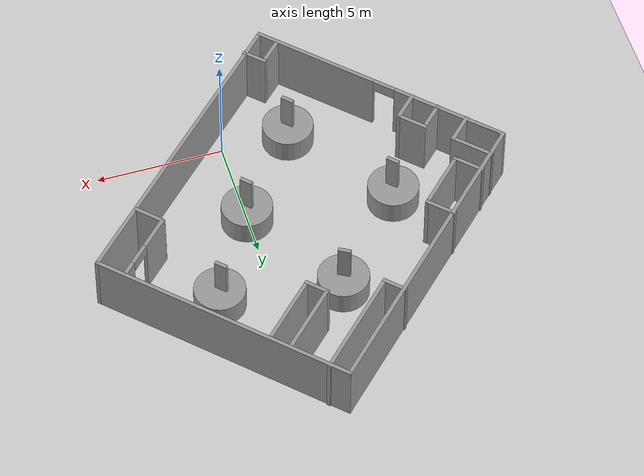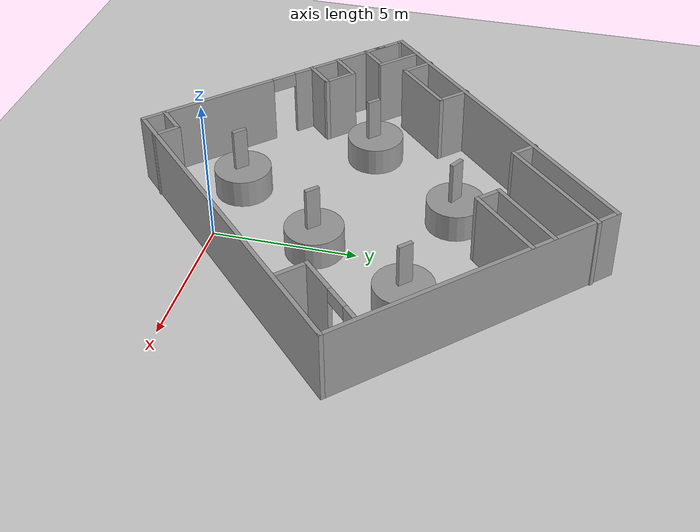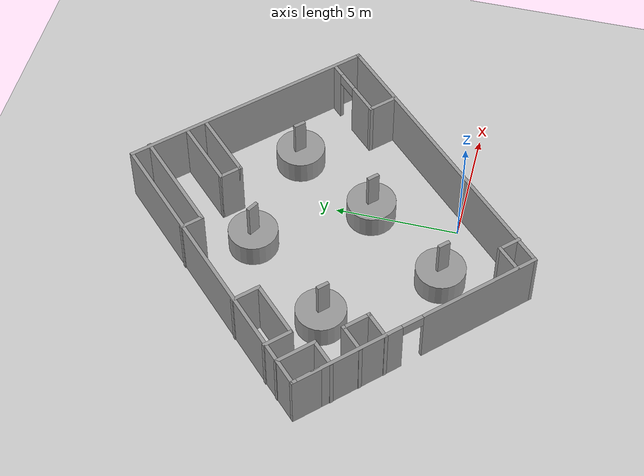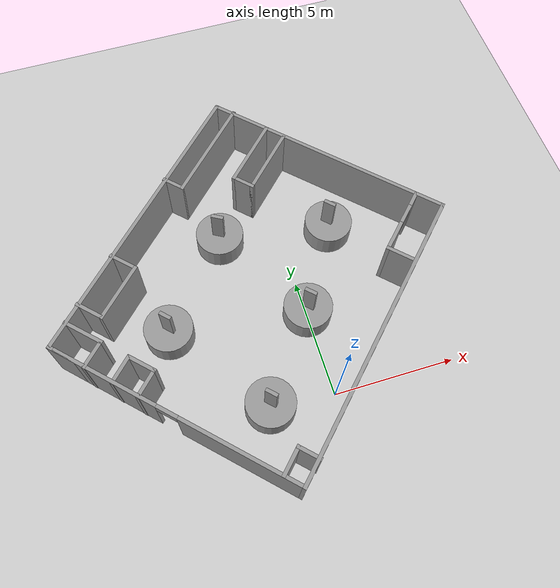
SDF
<sdf version="1.7">
 <world name="default">
  <light name="sun" type="directional">
   <pose>0 0 10 0 -0 0</pose>
   <diffuse>0.8 0.8 0.8 1</diffuse>
   <specular>0.2 0.2 0.2 1</specular>
   <attenuation>
    <range>1000</range>
    <constant>0.9</constant>
    <linear>0.01</linear>
    <quadratic>0.001</quadratic>
   </attenuation>
   <direction>-0.5 0.1 -0.9</direction>
   <spot><inner_angle>0</inner_angle><outer_angle>0</outer_angle><falloff>0</falloff></spot>
  </light>
  <model name="ground_plane">
   <static>1</static>
   <link name="link">
    <collision name="collision">
     <geometry><plane><normal>0 0 1</normal><size>100 100</size></plane></geometry>
     <surface>
      <contact><collide_bitmask>65535</collide_bitmask></contact>
      <friction><ode><mu>100</mu><mu2>50</mu2></ode></friction>
     </surface>
    </collision>
    <visual name="visual">
     <cast_shadows>0</cast_shadows>
     <geometry><plane><normal>0 0 1</normal><size>100 100</size></plane></geometry>
     <material>
      <script><uri>file://media/materials/scripts/gazebo.material</uri><name>Gazebo/Grey</name></script>
     </material>
    </visual>
   </link>
  </model>
  <gravity>0 0 -9.8</gravity>
  <magnetic_field>6e-06 2.3e-05 -4.2e-05</magnetic_field>
  <atmosphere type="adiabatic"/>
  <physics type="ode">
   <max_step_size>0.001</max_step_size>
   <real_time_factor>1</real_time_factor>
   <real_time_update_rate>1000</real_time_update_rate>
  </physics>
  <scene><ambient>0.4 0.4 0.4 1</ambient><background>0.7 0.7 0.7 1</background><shadows>1</shadows></scene>
  <spherical_coordinates>
   <surface_model>EARTH_WGS84</surface_model>
   <latitude_deg>0</latitude_deg>
   <longitude_deg>0</longitude_deg>
   <elevation>0</elevation>
   <heading_deg>0</heading_deg>
  </spherical_coordinates>
  <model name="lab_design">
   <pose>-1.80927 4.91103 0 0 -0 0</pose>
   <link name="Wall_100">
    <collision name="Wall_100_Collision">
     <geometry><box><size>1 0.15 2.5</size></box></geometry>
     <pose>0 0 1.25 0 -0 0</pose>
    </collision>
    <visual name="Wall_100_Visual">
     <pose>0 0 1.25 0 -0 0</pose>
     <geometry><box><size>1 0.15 2.5</size></box></geometry>
     <material>
      <script><uri>file://media/materials/scripts/gazebo.material</uri><name>Gazebo/Grey</name></script>
      <ambient>1 1 1 1</ambient>
     </material>
     <meta><layer>0</layer></meta>
    </visual>
    <pose>-0.19985 -7.14708 0 0 -0 -0.785398</pose>
   </link>
   <link name="Wall_15">
    <collision name="Wall_15_Collision">
     <geometry><box><size>0.5 0.15 2.5</size></box></geometry>
     <pose>0 0 1.25 0 -0 0</pose>
    </collision>
    <visual name="Wall_15_Visual">
     <pose>0 0 1.25 0 -0 0</pose>
     <geometry><box><size>0.5 0.15 2.5</size></box></geometry>
     <material>
      <script><uri>file://media/materials/scripts/gazebo.material</uri><name>Gazebo/Grey</name></script>
      <ambient>1 1 1 1</ambient>
     </material>
     <meta><layer>0</layer></meta>
    </visual>
    <pose>1.82373 -1.37773 0 0 -0 -0.785398</pose>
   </link>
   <link name="Wall_19">
    <collision name="Wall_19_Collision">
     <geometry><box><size>0.5 0.15 2.5</size></box></geometry>
     <pose>0 0 1.25 0 -0 0</pose>
    </collision>
    <visual name="Wall_19_Visual">
     <pose>0 0 1.25 0 -0 0</pose>
     <geometry><box><size>0.5 0.15 2.5</size></box></geometry>
     <material>
      <script><uri>file://media/materials/scripts/gazebo.material</uri><name>Gazebo/Grey</name></script>
      <ambient>1 1 1 1</ambient>
     </material>
     <meta><layer>0</layer></meta>
    </visual>
    <pose>-3.78926 -0.725735 0 0 -0 -0.785398</pose>
   </link>
   <link name="Wall_21">
    <collision name="Wall_21_Collision">
     <geometry><box><size>0.5 0.15 2.5</size></box></geometry>
     <pose>0 0 1.25 0 -0 0</pose>
    </collision>
    <visual name="Wall_21_Visual">
     <pose>0 0 1.25 0 -0 0</pose>
     <geometry><box><size>0.5 0.15 2.5</size></box></geometry>
     <material>
      <script><uri>file://media/materials/scripts/gazebo.material</uri><name>Gazebo/Grey</name></script>
      <ambient>1 1 1 1</ambient>
     </material>
     <meta><layer>0</layer></meta>
    </visual>
    <pose>-0.75467 2.8371 0 0 -0 -0.523599</pose>
   </link>
   <link name="Wall_23">
    <collision name="Wall_23_Collision">
     <geometry><box><size>0.5 0.15 2.5</size></box></geometry>
     <pose>0 0 1.25 0 -0 0</pose>
    </collision>
    <visual name="Wall_23_Visual">
     <pose>0 0 1.25 0 -0 0</pose>
     <geometry><box><size>0.5 0.15 2.5</size></box></geometry>
     <material>
      <script><uri>file://media/materials/scripts/gazebo.material</uri><name>Gazebo/Grey</name></script>
      <ambient>1 1 1 1</ambient>
     </material>
     <meta><layer>0</layer></meta>
    </visual>
    <pose>-0.811209 -4.73696 0 0 -0 -0.785398</pose>
   </link>
   <link name="Wall_25">
    <collision name="Wall_25_Collision">
     <geometry><box><size>0.5 0.15 2.5</size></box></geometry>
     <pose>0 0 1.25 0 -0 0</pose>
    </collision>
    <visual name="Wall_25_Visual">
     <pose>0 0 1.25 0 -0 0</pose>
     <geometry><box><size>0.5 0.15 2.5</size></box></geometry>
     <material>
      <script><uri>file://media/materials/scripts/gazebo.material</uri><name>Gazebo/Grey</name></script>
      <ambient>1 1 1 1</ambient>
     </material>
     <meta><layer>0</layer></meta>
    </visual>
    <pose>3.83481 2.12958 0 0 -0 -0.785398</pose>
   </link>
   <link name="Wall_4">
    <pose>-4.36638 -4.54316 0 0 -0 -0.785398</pose>
    <visual name="Wall_4_Visual_0">
     <pose>-3.01215 0 1.25 0 -0 0</pose>
     <geometry><box><size>4.4757 0.15 2.5</size></box></geometry>
     <material>
      <script><uri>file://media/materials/scripts/gazebo.material</uri><name>Gazebo/Grey</name></script>
      <ambient>1 1 1 1</ambient>
     </material>
     <meta><layer>0</layer></meta>
    </visual>
    <collision name="Wall_4_Collision_0">
     <geometry><box><size>4.4757 0.15 2.5</size></box></geometry>
     <pose>-3.01215 0 1.25 0 -0 0</pose>
    </collision>
    <visual name="Wall_4_Visual_1">
     <pose>2.68785 0 1.25 0 -0 0</pose>
     <geometry><box><size>5.1243 0.15 2.5</size></box></geometry>
     <material>
      <script><uri>file://media/materials/scripts/gazebo.material</uri><name>Gazebo/Grey</name></script>
      <ambient>1 1 1 1</ambient>
     </material>
     <meta><layer>0</layer></meta>
    </visual>
    <collision name="Wall_4_Collision_1">
     <geometry><box><size>5.1243 0.15 2.5</size></box></geometry>
     <pose>2.68785 0 1.25 0 -0 0</pose>
    </collision>
    <visual name="Wall_4_Visual_2">
     <pose>-0.324296 0 2.25 0 -0 0</pose>
     <geometry><box><size>0.9 0.15 0.5</size></box></geometry>
     <material>
      <script><uri>file://media/materials/scripts/gazebo.material</uri><name>Gazebo/Grey</name></script>
      <ambient>1 1 1 1</ambient>
     </material>
     <meta><layer>0</layer></meta>
    </visual>
    <collision name="Wall_4_Collision_2">
     <geometry><box><size>0.9 0.15 0.5</size></box></geometry>
     <pose>-0.324296 0 2.25 0 -0 0</pose>
    </collision>
   </link>
   <link name="Wall_5">
    <collision name="Wall_5_Collision">
     <geometry><box><size>12.75 0.15 2.5</size></box></geometry>
     <pose>0 0 1.25 0 -0 0</pose>
    </collision>
    <visual name="Wall_5_Visual">
     <pose>0 0 1.25 0 -0 0</pose>
     <geometry><box><size>12.75 0.15 2.5</size></box></geometry>
     <material>
      <script><uri>file://media/materials/scripts/gazebo.material</uri><name>Gazebo/Grey</name></script>
      <ambient>1 1 1 1</ambient>
     </material>
     <meta><layer>0</layer></meta>
    </visual>
    <pose>3.74767 -3.74767 0 0 -0 0.785398</pose>
   </link>
   <link name="Wall_6">
    <collision name="Wall_6_Collision">
     <geometry><box><size>10.75 0.15 2.5</size></box></geometry>
     <pose>0 0 1.25 0 -0 0</pose>
    </collision>
    <visual name="Wall_6_Visual">
     <pose>0 0 1.25 0 -0 0</pose>
     <geometry><box><size>10.75 0.15 2.5</size></box></geometry>
     <material>
      <script><uri>file://media/materials/scripts/gazebo.material</uri><name>Gazebo/Grey</name></script>
      <ambient>1 1 1 1</ambient>
     </material>
     <meta><layer>0</layer></meta>
    </visual>
    <pose>4.45477 4.45477 0 0 -0 2.35619</pose>
   </link>
   <link name="Wall_7">
    <collision name="Wall_7_Collision">
     <geometry><box><size>12.75 0.15 2.5</size></box></geometry>
     <pose>0 0 1.25 0 -0 0</pose>
    </collision>
    <visual name="Wall_7_Visual">
     <pose>0 0 1.25 0 -0 0</pose>
     <geometry><box><size>12.75 0.15 2.5</size></box></geometry>
     <material>
      <script><uri>file://media/materials/scripts/gazebo.material</uri><name>Gazebo/Grey</name></script>
      <ambient>1 1 1 1</ambient>
     </material>
     <meta><layer>0</layer></meta>
    </visual>
    <pose>-3.74767 3.74767 0 0 -0 -2.35619</pose>
   </link>
   <link name="Wall_77">
    <pose>6.36815 0.519819 0 0 -0 -2.35619</pose>
    <visual name="Wall_77_Visual_0">
     <pose>-1.15615 0 1.25 0 -0 0</pose>
     <geometry><box><size>0.687699 0.15 2.5</size></box></geometry>
     <material>
      <script><uri>file://media/materials/scripts/gazebo.material</uri><name>Gazebo/Grey</name></script>
      <ambient>1 1 1 1</ambient>
     </material>
     <meta><layer>0</layer></meta>
    </visual>
    <collision name="Wall_77_Collision_0">
     <geometry><box><size>0.687699 0.15 2.5</size></box></geometry>
     <pose>-1.15615 0 1.25 0 -0 0</pose>
    </collision>
    <visual name="Wall_77_Visual_1">
     <pose>0.793849 0 1.25 0 -0 0</pose>
     <geometry><box><size>1.4123 0.15 2.5</size></box></geometry>
     <material>
      <script><uri>file://media/materials/scripts/gazebo.material</uri><name>Gazebo/Grey</name></script>
      <ambient>1 1 1 1</ambient>
     </material>
     <meta><layer>0</layer></meta>
    </visual>
    <collision name="Wall_77_Collision_1">
     <geometry><box><size>1.4123 0.15 2.5</size></box></geometry>
     <pose>0.793849 0 1.25 0 -0 0</pose>
    </collision>
    <visual name="Wall_77_Visual_2">
     <pose>-0.362301 0 2.25 0 -0 0</pose>
     <geometry><box><size>0.9 0.15 0.5</size></box></geometry>
     <material>
      <script><uri>file://media/materials/scripts/gazebo.material</uri><name>Gazebo/Grey</name></script>
      <ambient>1 1 1 1</ambient>
     </material>
     <meta><layer>0</layer></meta>
    </visual>
    <collision name="Wall_77_Collision_2">
     <geometry><box><size>0.9 0.15 0.5</size></box></geometry>
     <pose>-0.362301 0 2.25 0 -0 0</pose>
    </collision>
   </link>
   <link name="Wall_78">
    <collision name="Wall_78_Collision">
     <geometry><box><size>1.25 0.15 2.5</size></box></geometry>
     <pose>0 0 1.25 0 -0 0</pose>
    </collision>
    <visual name="Wall_78_Visual">
     <pose>0 0 1.25 0 -0 0</pose>
     <geometry><box><size>1.25 0.15 2.5</size></box></geometry>
     <material>
      <script><uri>file://media/materials/scripts/gazebo.material</uri><name>Gazebo/Grey</name></script>
      <ambient>1 1 1 1</ambient>
     </material>
     <meta><layer>0</layer></meta>
    </visual>
    <pose>5.74944 -0.876716 0 0 -0 -0.785398</pose>
   </link>
   <link name="Wall_8">
    <collision name="Wall_8_Collision">
     <geometry><box><size>1.25 0.15 2.5</size></box></geometry>
     <pose>0 0 1.25 0 -0 0</pose>
    </collision>
    <visual name="Wall_8_Visual">
     <pose>0 0 1.25 0 -0 0</pose>
     <geometry><box><size>1.25 0.15 2.5</size></box></geometry>
     <material>
      <script><uri>file://media/materials/scripts/gazebo.material</uri><name>Gazebo/Grey</name></script>
      <ambient>1 1 1 1</ambient>
     </material>
     <meta><layer>0</layer></meta>
    </visual>
    <pose>-7.81353 -1.09602 0 0 -0 -0.785398</pose>
   </link>
   <link name="Wall_81">
    <collision name="Wall_81_Collision">
     <geometry><box><size>1.25 0.15 2.5</size></box></geometry>
     <pose>0 0 1.25 0 -0 0</pose>
    </collision>
    <visual name="Wall_81_Visual">
     <pose>0 0 1.25 0 -0 0</pose>
     <geometry><box><size>1.25 0.15 2.5</size></box></geometry>
     <material>
      <script><uri>file://media/materials/scripts/gazebo.material</uri><name>Gazebo/Grey</name></script>
      <ambient>1 1 1 1</ambient>
     </material>
     <meta><layer>0</layer></meta>
    </visual>
    <pose>-6.71045 -1.44536 0 0 -0 0.785398</pose>
   </link>
   <link name="Wall_82">
    <collision name="Wall_82_Collision">
     <geometry><box><size>1.75 0.15 2.5</size></box></geometry>
     <pose>0 0 1.25 0 -0 0</pose>
    </collision>
    <visual name="Wall_82_Visual">
     <pose>0 0 1.25 0 -0 0</pose>
     <geometry><box><size>1.75 0.15 2.5</size></box></geometry>
     <material>
      <script><uri>file://media/materials/scripts/gazebo.material</uri><name>Gazebo/Grey</name></script>
      <ambient>1 1 1 1</ambient>
     </material>
     <meta><layer>0</layer></meta>
    </visual>
    <pose>-6.88722 -0.490762 0 0 -0 2.35619</pose>
   </link>
   <link name="Wall_84">
    <collision name="Wall_84_Collision">
     <geometry><box><size>1.25 0.15 2.5</size></box></geometry>
     <pose>0 0 1.25 0 -0 0</pose>
    </collision>
    <visual name="Wall_84_Visual">
     <pose>0 0 1.25 0 -0 0</pose>
     <geometry><box><size>1.25 0.15 2.5</size></box></geometry>
     <material>
      <script><uri>file://media/materials/scripts/gazebo.material</uri><name>Gazebo/Grey</name></script>
      <ambient>1 1 1 1</ambient>
     </material>
     <meta><layer>0</layer></meta>
    </visual>
    <pose>-5.84036 -2.31545 0 0 -0 0.785398</pose>
   </link>
   <link name="Wall_85">
    <collision name="Wall_85_Collision">
     <geometry><box><size>1.25 0.15 2.5</size></box></geometry>
     <pose>0 0 1.25 0 -0 0</pose>
    </collision>
    <visual name="Wall_85_Visual">
     <pose>0 0 1.25 0 -0 0</pose>
     <geometry><box><size>1.25 0.15 2.5</size></box></geometry>
     <material>
      <script><uri>file://media/materials/scripts/gazebo.material</uri><name>Gazebo/Grey</name></script>
      <ambient>1 1 1 1</ambient>
     </material>
     <meta><layer>0</layer></meta>
    </visual>
    <pose>-5.06254 -2.31545 0 0 -0 -0.785398</pose>
   </link>
   <link name="Wall_86">
    <collision name="Wall_86_Collision">
     <geometry><box><size>1.25 0.15 2.5</size></box></geometry>
     <pose>0 0 1.25 0 -0 0</pose>
    </collision>
    <visual name="Wall_86_Visual">
     <pose>0 0 1.25 0 -0 0</pose>
     <geometry><box><size>1.25 0.15 2.5</size></box></geometry>
     <material>
      <script><uri>file://media/materials/scripts/gazebo.material</uri><name>Gazebo/Grey</name></script>
      <ambient>1 1 1 1</ambient>
     </material>
     <meta><layer>0</layer></meta>
    </visual>
    <pose>-5.06254 -3.09326 0 0 -0 -2.35619</pose>
   </link>
   <link name="Wall_88">
    <collision name="Wall_88_Collision">
     <geometry><box><size>3 0.15 2.5</size></box></geometry>
     <pose>0 0 1.25 0 -0 0</pose>
    </collision>
    <visual name="Wall_88_Visual">
     <pose>0 0 1.25 0 -0 0</pose>
     <geometry><box><size>3 0.15 2.5</size></box></geometry>
     <material>
      <script><uri>file://media/materials/scripts/gazebo.material</uri><name>Gazebo/Grey</name></script>
      <ambient>1 1 1 1</ambient>
     </material>
     <meta><layer>0</layer></meta>
    </visual>
    <pose>1.43231 5.44864 0 0 -0 -2.35619</pose>
   </link>
   <link name="Wall_89">
    <collision name="Wall_89_Collision">
     <geometry><box><size>1 0.15 2.5</size></box></geometry>
     <pose>0 0 1.25 0 -0 0</pose>
    </collision>
    <visual name="Wall_89_Visual">
     <pose>0 0 1.25 0 -0 0</pose>
     <geometry><box><size>1 0.15 2.5</size></box></geometry>
     <material>
      <script><uri>file://media/materials/scripts/gazebo.material</uri><name>Gazebo/Grey</name></script>
      <ambient>1 1 1 1</ambient>
     </material>
     <meta><layer>0</layer></meta>
    </visual>
    <pose>0.725206 4.14049 0 0 -0 -0.785398</pose>
   </link>
   <link name="Wall_90">
    <collision name="Wall_90_Collision">
     <geometry><box><size>3 0.15 2.5</size></box></geometry>
     <pose>0 0 1.25 0 -0 0</pose>
    </collision>
    <visual name="Wall_90_Visual">
     <pose>0 0 1.25 0 -0 0</pose>
     <geometry><box><size>3 0.15 2.5</size></box></geometry>
     <material>
      <script><uri>file://media/materials/scripts/gazebo.material</uri><name>Gazebo/Grey</name></script>
      <ambient>1 1 1 1</ambient>
     </material>
     <meta><layer>0</layer></meta>
    </visual>
    <pose>2.03335 4.8476 0 0 -0 0.785398</pose>
   </link>
   <link name="Wall_92">
    <collision name="Wall_92_Collision">
     <geometry><box><size>1 0.15 2.5</size></box></geometry>
     <pose>0 0 1.25 0 -0 0</pose>
    </collision>
    <visual name="Wall_92_Visual">
     <pose>0 0 1.25 0 -0 0</pose>
     <geometry><box><size>1 0.15 2.5</size></box></geometry>
     <material>
      <script><uri>file://media/materials/scripts/gazebo.material</uri><name>Gazebo/Grey</name></script>
      <ambient>1 1 1 1</ambient>
     </material>
     <meta><layer>0</layer></meta>
    </visual>
    <pose>-2.06322 4.88659 0 0 -0 -0.785398</pose>
   </link>
   <link name="Wall_93">
    <collision name="Wall_93_Collision">
     <geometry><box><size>4.5 0.15 2.5</size></box></geometry>
     <pose>0 0 1.25 0 -0 0</pose>
    </collision>
    <visual name="Wall_93_Visual">
     <pose>0 0 1.25 0 -0 0</pose>
     <geometry><box><size>4.5 0.15 2.5</size></box></geometry>
     <material>
      <script><uri>file://media/materials/scripts/gazebo.material</uri><name>Gazebo/Grey</name></script>
      <ambient>1 1 1 1</ambient>
     </material>
     <meta><layer>0</layer></meta>
    </visual>
    <pose>-0.224739 6.12403 0 0 -0 0.785398</pose>
   </link>
   <link name="Wall_95">
    <collision name="Wall_95_Collision">
     <geometry><box><size>1.25 0.15 2.5</size></box></geometry>
     <pose>0 0 1.25 0 -0 0</pose>
    </collision>
    <visual name="Wall_95_Visual">
     <pose>0 0 1.25 0 -0 0</pose>
     <geometry><box><size>1.25 0.15 2.5</size></box></geometry>
     <material>
      <script><uri>file://media/materials/scripts/gazebo.material</uri><name>Gazebo/Grey</name></script>
      <ambient>1 1 1 1</ambient>
     </material>
     <meta><layer>0</layer></meta>
    </visual>
    <pose>-6.48356 0.28718 0 0 -0 -0.785398</pose>
   </link>
   <link name="Wall_96">
    <collision name="Wall_96_Collision">
     <geometry><box><size>2.5 0.15 2.5</size></box></geometry>
     <pose>0 0 1.25 0 -0 0</pose>
    </collision>
    <visual name="Wall_96_Visual">
     <pose>0 0 1.25 0 -0 0</pose>
     <geometry><box><size>2.5 0.15 2.5</size></box></geometry>
     <material>
      <script><uri>file://media/materials/scripts/gazebo.material</uri><name>Gazebo/Grey</name></script>
      <ambient>1 1 1 1</ambient>
     </material>
     <meta><layer>0</layer></meta>
    </visual>
    <pose>-5.2638 0.729121 0 0 -0 0.785398</pose>
   </link>
   <link name="Wall_97">
    <collision name="Wall_97_Collision">
     <geometry><box><size>1.25 0.15 2.5</size></box></geometry>
     <pose>0 0 1.25 0 -0 0</pose>
    </collision>
    <visual name="Wall_97_Visual">
     <pose>0 0 1.25 0 -0 0</pose>
     <geometry><box><size>1.25 0.15 2.5</size></box></geometry>
     <material>
      <script><uri>file://media/materials/scripts/gazebo.material</uri><name>Gazebo/Grey</name></script>
      <ambient>1 1 1 1</ambient>
     </material>
     <meta><layer>0</layer></meta>
    </visual>
    <pose>-4.82186 1.94888 0 0 -0 2.35619</pose>
   </link>
   <link name="Wall_99">
    <collision name="Wall_99_Collision">
     <geometry><box><size>1.25 0.15 2.5</size></box></geometry>
     <pose>0 0 1.25 0 -0 0</pose>
    </collision>
    <visual name="Wall_99_Visual">
     <pose>0 0 1.25 0 -0 0</pose>
     <geometry><box><size>1.25 0.15 2.5</size></box></geometry>
     <material>
      <script><uri>file://media/materials/scripts/gazebo.material</uri><name>Gazebo/Grey</name></script>
      <ambient>1 1 1 1</ambient>
     </material>
     <meta><layer>0</layer></meta>
    </visual>
    <pose>-0.889279 -7.23547 0 0 -0 0.785398</pose>
   </link>
   <static>1</static>
  </model>
  <model name="lab_design_2">
   <link name="link_1">
    <inertial>
     <mass>1</mass>
     <inertia><ixx>0.145833</ixx><ixy>0</ixy><ixz>0</ixz><iyy>0.145833</iyy><iyz>0</iyz><izz>0.125</izz></inertia>
    </inertial>
    <pose>1.74827 -1.00362 0 0 -0 0</pose>
    <visual name="visual">
     <geometry><cylinder><radius>1</radius><length>1</length></cylinder></geometry>
     <material>
      <lighting>1</lighting>
      <script><uri>file://media/materials/scripts/gazebo.material</uri><name>Gazebo/Grey</name></script>
      <shader type="pixel"><normal_map>__default__</normal_map></shader>
      <ambient>0.3 0.3 0.3 1</ambient>
      <diffuse>0.7 0.7 0.7 1</diffuse>
      <specular>0.01 0.01 0.01 1</specular>
      <emissive>0 0 0 1</emissive>
     </material>
    </visual>
    <collision name="collision">
     <geometry><cylinder><radius>0.5</radius><length>1</length></cylinder></geometry>
     <surface>
      <friction>
       <ode><mu>1</mu><mu2>1</mu2><fdir1>0 0 0</fdir1><slip1>0</slip1><slip2>0</slip2></ode>
       <torsional>
        <coefficient>1</coefficient>
        <patch_radius>0</patch_radius>
        <surface_radius>0</surface_radius>
        <use_patch_radius>1</use_patch_radius>
        <ode><slip>0</slip></ode>
       </torsional>
      </friction>
      <bounce><restitution_coefficient>0</restitution_coefficient><threshold>1e+06</threshold></bounce>
      <contact>
       <collide_without_contact>0</collide_without_contact>
       <collide_without_contact_bitmask>1</collide_without_contact_bitmask>
       <collide_bitmask>1</collide_bitmask>
       <ode>
        <soft_cfm>0</soft_cfm>
        <soft_erp>0.2</soft_erp>
        <kp>1e+13</kp>
        <kd>1</kd>
        <max_vel>0.01</max_vel>
        <min_depth>0</min_depth>
       </ode>
       <bullet>
        <split_impulse>1</split_impulse>
        <split_impulse_penetration_threshold>-0.01</split_impulse_penetration_threshold>
        <soft_cfm>0</soft_cfm>
        <soft_erp>0.2</soft_erp>
        <kp>1e+13</kp>
        <kd>1</kd>
       </bullet>
      </contact>
     </surface>
    </collision>
   </link>
   <link name="link_1_clone">
    <inertial>
     <mass>1</mass>
     <inertia><ixx>0.145833</ixx><ixy>0</ixy><ixz>0</ixz><iyy>0.145833</iyy><iyz>0</iyz><izz>0.125</izz></inertia>
    </inertial>
    <pose>-0.795277 3.21424 0 0 -0 0</pose>
    <visual name="visual">
     <geometry><cylinder><radius>1</radius><length>1</length></cylinder></geometry>
     <material>
      <lighting>1</lighting>
      <script><uri>file://media/materials/scripts/gazebo.material</uri><name>Gazebo/Grey</name></script>
      <shader type="pixel"><normal_map>__default__</normal_map></shader>
      <ambient>0.3 0.3 0.3 1</ambient>
      <diffuse>0.7 0.7 0.7 1</diffuse>
      <specular>0.01 0.01 0.01 1</specular>
      <emissive>0 0 0 1</emissive>
     </material>
    </visual>
    <collision name="collision">
     <geometry><cylinder><radius>0.5</radius><length>1</length></cylinder></geometry>
     <surface>
      <friction>
       <ode><mu>1</mu><mu2>1</mu2><fdir1>0 0 0</fdir1><slip1>0</slip1><slip2>0</slip2></ode>
       <torsional>
        <coefficient>1</coefficient>
        <patch_radius>0</patch_radius>
        <surface_radius>0</surface_radius>
        <use_patch_radius>1</use_patch_radius>
        <ode><slip>0</slip></ode>
       </torsional>
      </friction>
      <bounce><restitution_coefficient>0</restitution_coefficient><threshold>1e+06</threshold></bounce>
      <contact>
       <collide_without_contact>0</collide_without_contact>
       <collide_without_contact_bitmask>1</collide_without_contact_bitmask>
       <collide_bitmask>1</collide_bitmask>
       <ode>
        <soft_cfm>0</soft_cfm>
        <soft_erp>0.2</soft_erp>
        <kp>1e+13</kp>
        <kd>1</kd>
        <max_vel>0.01</max_vel>
        <min_depth>0</min_depth>
       </ode>
       <bullet>
        <split_impulse>1</split_impulse>
        <split_impulse_penetration_threshold>-0.01</split_impulse_penetration_threshold>
        <soft_cfm>0</soft_cfm>
        <soft_erp>0.2</soft_erp>
        <kp>1e+13</kp>
        <kd>1</kd>
       </bullet>
      </contact>
     </surface>
    </collision>
   </link>
   <link name="link_1_clone_0">
    <inertial>
     <mass>1</mass>
     <inertia><ixx>0.145833</ixx><ixy>0</ixy><ixz>0</ixz><iyy>0.145833</iyy><iyz>0</iyz><izz>0.125</izz></inertia>
    </inertial>
    <pose>3.82861 2.46178 0 0 -0 0</pose>
    <visual name="visual">
     <geometry><cylinder><radius>1</radius><length>1</length></cylinder></geometry>
     <material>
      <lighting>1</lighting>
      <script><uri>file://media/materials/scripts/gazebo.material</uri><name>Gazebo/Grey</name></script>
      <shader type="pixel"><normal_map>__default__</normal_map></shader>
      <ambient>0.3 0.3 0.3 1</ambient>
      <diffuse>0.7 0.7 0.7 1</diffuse>
      <specular>0.01 0.01 0.01 1</specular>
      <emissive>0 0 0 1</emissive>
     </material>
    </visual>
    <collision name="collision">
     <geometry><cylinder><radius>0.5</radius><length>1</length></cylinder></geometry>
     <surface>
      <friction>
       <ode><mu>1</mu><mu2>1</mu2><fdir1>0 0 0</fdir1><slip1>0</slip1><slip2>0</slip2></ode>
       <torsional>
        <coefficient>1</coefficient>
        <patch_radius>0</patch_radius>
        <surface_radius>0</surface_radius>
        <use_patch_radius>1</use_patch_radius>
        <ode><slip>0</slip></ode>
       </torsional>
      </friction>
      <bounce><restitution_coefficient>0</restitution_coefficient><threshold>1e+06</threshold></bounce>
      <contact>
       <collide_without_contact>0</collide_without_contact>
       <collide_without_contact_bitmask>1</collide_without_contact_bitmask>
       <collide_bitmask>1</collide_bitmask>
       <ode>
        <soft_cfm>0</soft_cfm>
        <soft_erp>0.2</soft_erp>
        <kp>1e+13</kp>
        <kd>1</kd>
        <max_vel>0.01</max_vel>
        <min_depth>0</min_depth>
       </ode>
       <bullet>
        <split_impulse>1</split_impulse>
        <split_impulse_penetration_threshold>-0.01</split_impulse_penetration_threshold>
        <soft_cfm>0</soft_cfm>
        <soft_erp>0.2</soft_erp>
        <kp>1e+13</kp>
        <kd>1</kd>
       </bullet>
      </contact>
     </surface>
    </collision>
   </link>
   <link name="link_1_clone_1">
    <inertial>
     <mass>1</mass>
     <inertia><ixx>0.145833</ixx><ixy>0</ixy><ixz>0</ixz><iyy>0.145833</iyy><iyz>0</iyz><izz>0.125</izz></inertia>
    </inertial>
    <pose>-0.886067 -4.35595 0 0 -0 0</pose>
    <visual name="visual">
     <geometry><cylinder><radius>1</radius><length>1</length></cylinder></geometry>
     <material>
      <lighting>1</lighting>
      <script><uri>file://media/materials/scripts/gazebo.material</uri><name>Gazebo/Grey</name></script>
      <shader type="pixel"><normal_map>__default__</normal_map></shader>
      <ambient>0.3 0.3 0.3 1</ambient>
      <diffuse>0.7 0.7 0.7 1</diffuse>
      <specular>0.01 0.01 0.01 1</specular>
      <emissive>0 0 0 1</emissive>
     </material>
    </visual>
    <collision name="collision">
     <geometry><cylinder><radius>0.5</radius><length>1</length></cylinder></geometry>
     <surface>
      <friction>
       <ode><mu>1</mu><mu2>1</mu2><fdir1>0 0 0</fdir1><slip1>0</slip1><slip2>0</slip2></ode>
       <torsional>
        <coefficient>1</coefficient>
        <patch_radius>0</patch_radius>
        <surface_radius>0</surface_radius>
        <use_patch_radius>1</use_patch_radius>
        <ode><slip>0</slip></ode>
       </torsional>
      </friction>
      <bounce><restitution_coefficient>0</restitution_coefficient><threshold>1e+06</threshold></bounce>
      <contact>
       <collide_without_contact>0</collide_without_contact>
       <collide_without_contact_bitmask>1</collide_without_contact_bitmask>
       <collide_bitmask>1</collide_bitmask>
       <ode>
        <soft_cfm>0</soft_cfm>
        <soft_erp>0.2</soft_erp>
        <kp>1e+13</kp>
        <kd>1</kd>
        <max_vel>0.01</max_vel>
        <min_depth>0</min_depth>
       </ode>
       <bullet>
        <split_impulse>1</split_impulse>
        <split_impulse_penetration_threshold>-0.01</split_impulse_penetration_threshold>
        <soft_cfm>0</soft_cfm>
        <soft_erp>0.2</soft_erp>
        <kp>1e+13</kp>
        <kd>1</kd>
       </bullet>
      </contact>
     </surface>
    </collision>
   </link>
   <link name="link_1_clone_2">
    <inertial>
     <mass>1</mass>
     <inertia><ixx>0.145833</ixx><ixy>0</ixy><ixz>0</ixz><iyy>0.145833</iyy><iyz>0</iyz><izz>0.125</izz></inertia>
    </inertial>
    <pose>-3.89554 -0.316455 0 0 -0 0</pose>
    <visual name="visual">
     <geometry><cylinder><radius>1</radius><length>1</length></cylinder></geometry>
     <material>
      <lighting>1</lighting>
      <script><uri>file://media/materials/scripts/gazebo.material</uri><name>Gazebo/Grey</name></script>
      <shader type="pixel"><normal_map>__default__</normal_map></shader>
      <ambient>0.3 0.3 0.3 1</ambient>
      <diffuse>0.7 0.7 0.7 1</diffuse>
      <specular>0.01 0.01 0.01 1</specular>
      <emissive>0 0 0 1</emissive>
     </material>
    </visual>
    <collision name="collision">
     <geometry><cylinder><radius>0.5</radius><length>1</length></cylinder></geometry>
     <surface>
      <friction>
       <ode><mu>1</mu><mu2>1</mu2><fdir1>0 0 0</fdir1><slip1>0</slip1><slip2>0</slip2></ode>
       <torsional>
        <coefficient>1</coefficient>
        <patch_radius>0</patch_radius>
        <surface_radius>0</surface_radius>
        <use_patch_radius>1</use_patch_radius>
        <ode><slip>0</slip></ode>
       </torsional>
      </friction>
      <bounce><restitution_coefficient>0</restitution_coefficient><threshold>1e+06</threshold></bounce>
      <contact>
       <collide_without_contact>0</collide_without_contact>
       <collide_without_contact_bitmask>1</collide_without_contact_bitmask>
       <collide_bitmask>1</collide_bitmask>
       <ode>
        <soft_cfm>0</soft_cfm>
        <soft_erp>0.2</soft_erp>
        <kp>1e+13</kp>
        <kd>1</kd>
        <max_vel>0.01</max_vel>
        <min_depth>0</min_depth>
       </ode>
       <bullet>
        <split_impulse>1</split_impulse>
        <split_impulse_penetration_threshold>-0.01</split_impulse_penetration_threshold>
        <soft_cfm>0</soft_cfm>
        <soft_erp>0.2</soft_erp>
        <kp>1e+13</kp>
        <kd>1</kd>
       </bullet>
      </contact>
     </surface>
    </collision>
   </link>
   <static>0</static>
   <pose>-1.7308 4.57079 0.5 0 -0 0</pose>
  </model>
 </world>
</sdf>
